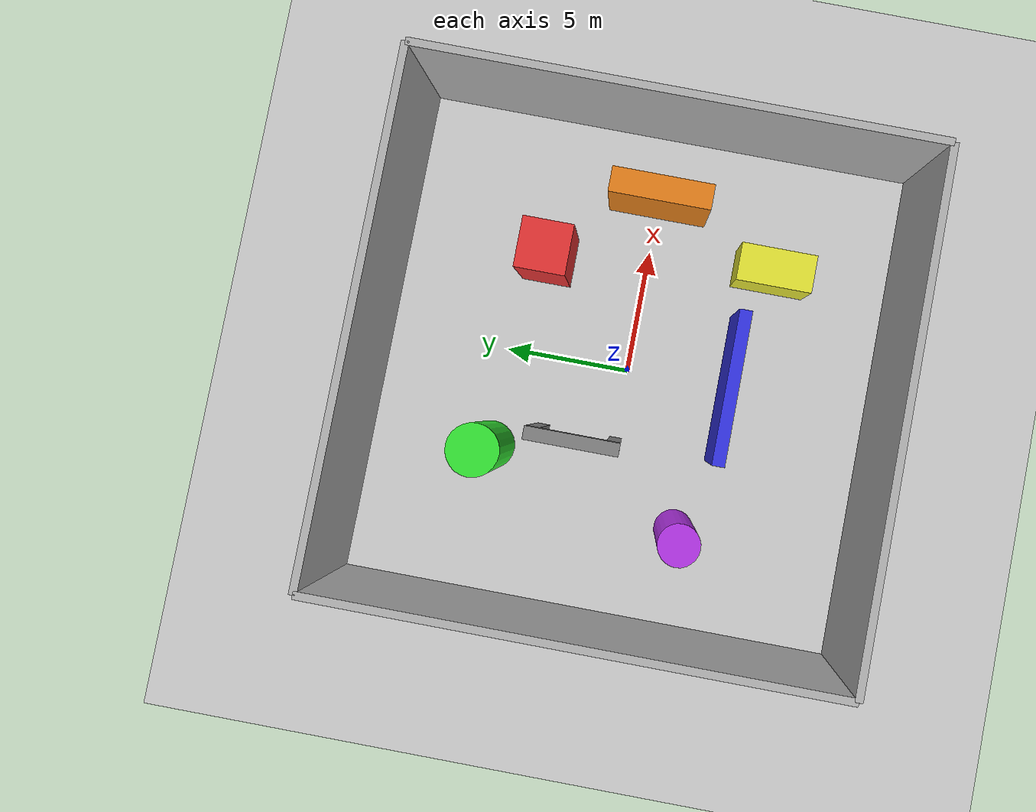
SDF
<?xml version="1.0" ?>
<sdf version="1.5">
  <world name="default">
    <!-- 光源 -->
    <include>
      <uri>model://sun</uri>
    </include>
    <include>
      <uri>model://ground_plane</uri>
    </include>

    <!-- 物理引擎 -->
    <physics name='default_physics' default='0' type='ode'>
      <gravity>0 0 -9.8066</gravity>
      <ode>
        <solver>
          <type>quick</type>
          <iters>10</iters>
          <sor>1.3</sor>
        </solver>
      </ode>
      <max_step_size>0.004</max_step_size>
      <real_time_factor>1</real_time_factor>
      <real_time_update_rate>250</real_time_update_rate>
    </physics>

    <!-- ========== 房间外墙 (20m x 20m x 5m) ========== -->

    <!-- 北墙 -->
    <model name="wall_north">
      <static>true</static>
      <pose>0 10 2.5 0 0 0</pose>
      <link name="link">
        <collision name="collision">
          <geometry><box><size>20 0.3 5</size></box></geometry>
        </collision>
        <visual name="visual">
          <geometry><box><size>20 0.3 5</size></box></geometry>
          <material>
            <ambient>0.7 0.7 0.7 1</ambient>
            <diffuse>0.7 0.7 0.7 1</diffuse>
          </material>
        </visual>
      </link>
    </model>

    <!-- 南墙 -->
    <model name="wall_south">
      <static>true</static>
      <pose>0 -10 2.5 0 0 0</pose>
      <link name="link">
        <collision name="collision">
          <geometry><box><size>20 0.3 5</size></box></geometry>
        </collision>
        <visual name="visual">
          <geometry><box><size>20 0.3 5</size></box></geometry>
          <material>
            <ambient>0.7 0.7 0.7 1</ambient>
            <diffuse>0.7 0.7 0.7 1</diffuse>
          </material>
        </visual>
      </link>
    </model>

    <!-- 东墙 -->
    <model name="wall_east">
      <static>true</static>
      <pose>10 0 2.5 0 0 0</pose>
      <link name="link">
        <collision name="collision">
          <geometry><box><size>0.3 20 5</size></box></geometry>
        </collision>
        <visual name="visual">
          <geometry><box><size>0.3 20 5</size></box></geometry>
          <material>
            <ambient>0.7 0.7 0.7 1</ambient>
            <diffuse>0.7 0.7 0.7 1</diffuse>
          </material>
        </visual>
      </link>
    </model>

    <!-- 西墙 -->
    <model name="wall_west">
      <static>true</static>
      <pose>-10 0 2.5 0 0 0</pose>
      <link name="link">
        <collision name="collision">
          <geometry><box><size>0.3 20 5</size></box></geometry>
        </collision>
        <visual name="visual">
          <geometry><box><size>0.3 20 5</size></box></geometry>
          <material>
            <ambient>0.7 0.7 0.7 1</ambient>
            <diffuse>0.7 0.7 0.7 1</diffuse>
          </material>
        </visual>
      </link>
    </model>

    <!-- ========== 内部障碍物 ========== -->

    <!-- 红色立方体障碍 1 -->
    <model name="obstacle_1">
      <static>true</static>
      <pose>4 4 1.5 0 0 0</pose>
      <link name="link">
        <collision name="collision">
          <geometry><box><size>2 2 3</size></box></geometry>
        </collision>
        <visual name="visual">
          <geometry><box><size>2 2 3</size></box></geometry>
          <material>
            <ambient>0.9 0.2 0.2 1</ambient>
            <diffuse>0.9 0.2 0.2 1</diffuse>
          </material>
        </visual>
      </link>
    </model>

    <!-- 绿色圆柱障碍 2 -->
    <model name="obstacle_2">
      <static>true</static>
      <pose>-4 5 2 0 0 0</pose>
      <link name="link">
        <collision name="collision">
          <geometry>
            <cylinder><radius>1</radius><length>4</length></cylinder>
          </geometry>
        </collision>
        <visual name="visual">
          <geometry>
            <cylinder><radius>1</radius><length>4</length></cylinder>
          </geometry>
          <material>
            <ambient>0.2 0.9 0.2 1</ambient>
            <diffuse>0.2 0.9 0.2 1</diffuse>
          </material>
        </visual>
      </link>
    </model>

    <!-- 蓝色长墙障碍 3 -->
    <model name="obstacle_3">
      <static>true</static>
      <pose>0 -4 1.5 0 0 0</pose>
      <link name="link">
        <collision name="collision">
          <geometry><box><size>6 0.5 3</size></box></geometry>
        </collision>
        <visual name="visual">
          <geometry><box><size>6 0.5 3</size></box></geometry>
          <material>
            <ambient>0.2 0.2 0.9 1</ambient>
            <diffuse>0.2 0.2 0.9 1</diffuse>
          </material>
        </visual>
      </link>
    </model>

    <!-- 黄色障碍 4 -->
    <model name="obstacle_4">
      <static>true</static>
      <pose>5 -5 1 0 0 0</pose>
      <link name="link">
        <collision name="collision">
          <geometry><box><size>1.5 3 2</size></box></geometry>
        </collision>
        <visual name="visual">
          <geometry><box><size>1.5 3 2</size></box></geometry>
          <material>
            <ambient>0.9 0.9 0.2 1</ambient>
            <diffuse>0.9 0.9 0.2 1</diffuse>
          </material>
        </visual>
      </link>
    </model>

    <!-- 紫色高柱 5 -->
    <model name="obstacle_5">
      <static>true</static>
      <pose>-6 -3 2 0 0 0</pose>
      <link name="link">
        <collision name="collision">
          <geometry>
            <cylinder><radius>0.8</radius><length>4</length></cylinder>
          </geometry>
        </collision>
        <visual name="visual">
          <geometry>
            <cylinder><radius>0.8</radius><length>4</length></cylinder>
          </geometry>
          <material>
            <ambient>0.7 0.2 0.9 1</ambient>
            <diffuse>0.7 0.2 0.9 1</diffuse>
          </material>
        </visual>
      </link>
    </model>

    <!-- 橙色障碍 6 -->
    <model name="obstacle_6">
      <static>true</static>
      <pose>7 0 1.5 0 0 0</pose>
      <link name="link">
        <collision name="collision">
          <geometry><box><size>1 4 3</size></box></geometry>
        </collision>
        <visual name="visual">
          <geometry><box><size>1 4 3</size></box></geometry>
          <material>
            <ambient>0.9 0.5 0.1 1</ambient>
            <diffuse>0.9 0.5 0.1 1</diffuse>
          </material>
        </visual>
      </link>
    </model>

    <!-- 门形通道 -->
    <model name="gate_left">
      <static>true</static>
      <pose>-3 0 2 0 0 0</pose>
      <link name="link">
        <collision name="collision">
          <geometry><box><size>0.5 0.5 4</size></box></geometry>
        </collision>
        <visual name="visual">
          <geometry><box><size>0.5 0.5 4</size></box></geometry>
          <material>
            <ambient>0.5 0.5 0.5 1</ambient>
            <diffuse>0.5 0.5 0.5 1</diffuse>
          </material>
        </visual>
      </link>
    </model>

    <model name="gate_right">
      <static>true</static>
      <pose>-3 3 2 0 0 0</pose>
      <link name="link">
        <collision name="collision">
          <geometry><box><size>0.5 0.5 4</size></box></geometry>
        </collision>
        <visual name="visual">
          <geometry><box><size>0.5 0.5 4</size></box></geometry>
          <material>
            <ambient>0.5 0.5 0.5 1</ambient>
            <diffuse>0.5 0.5 0.5 1</diffuse>
          </material>
        </visual>
      </link>
    </model>

    <model name="gate_top">
      <static>true</static>
      <pose>-3 1.5 4.25 0 0 0</pose>
      <link name="link">
        <collision name="collision">
          <geometry><box><size>0.5 3.5 0.5</size></box></geometry>
        </collision>
        <visual name="visual">
          <geometry><box><size>0.5 3.5 0.5</size></box></geometry>
          <material>
            <ambient>0.5 0.5 0.5 1</ambient>
            <diffuse>0.5 0.5 0.5 1</diffuse>
          </material>
        </visual>
      </link>
    </model>

  </world>
</sdf>
